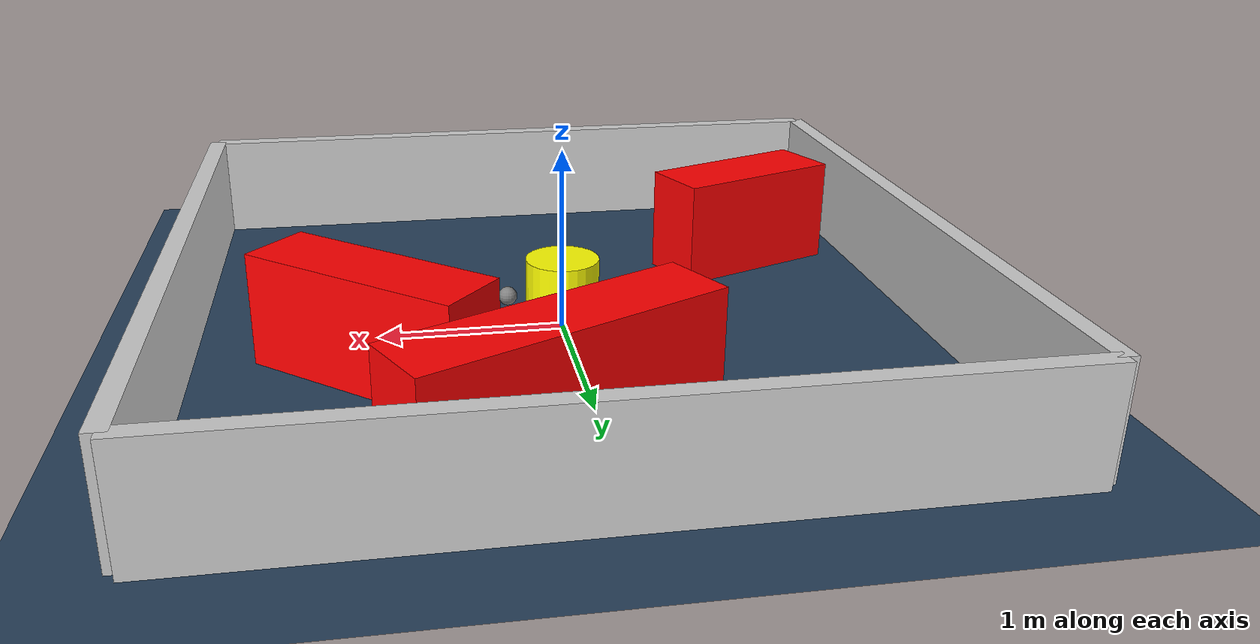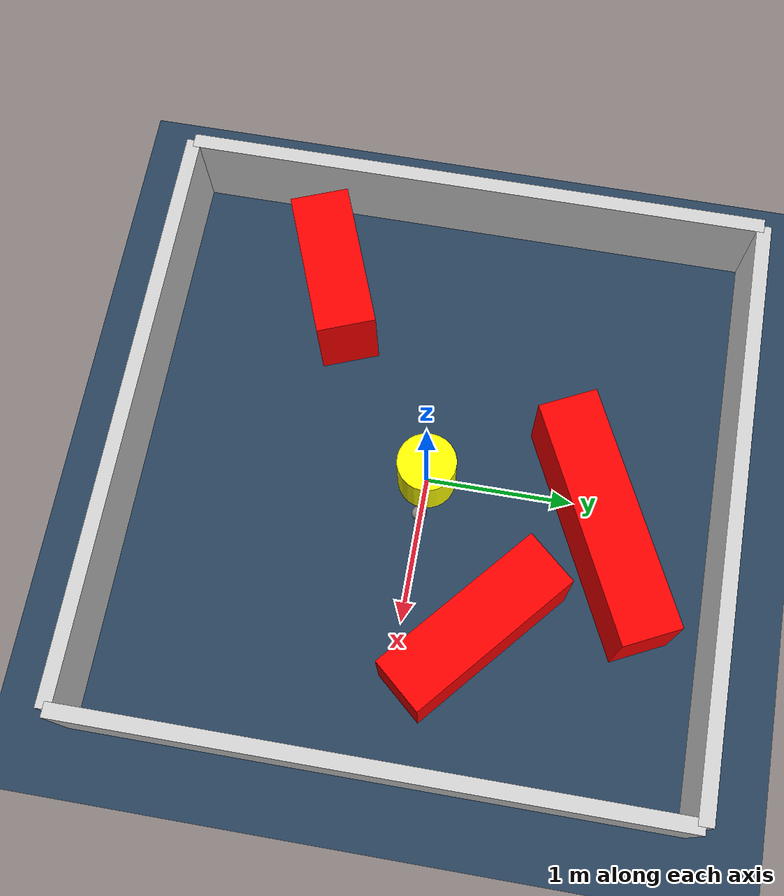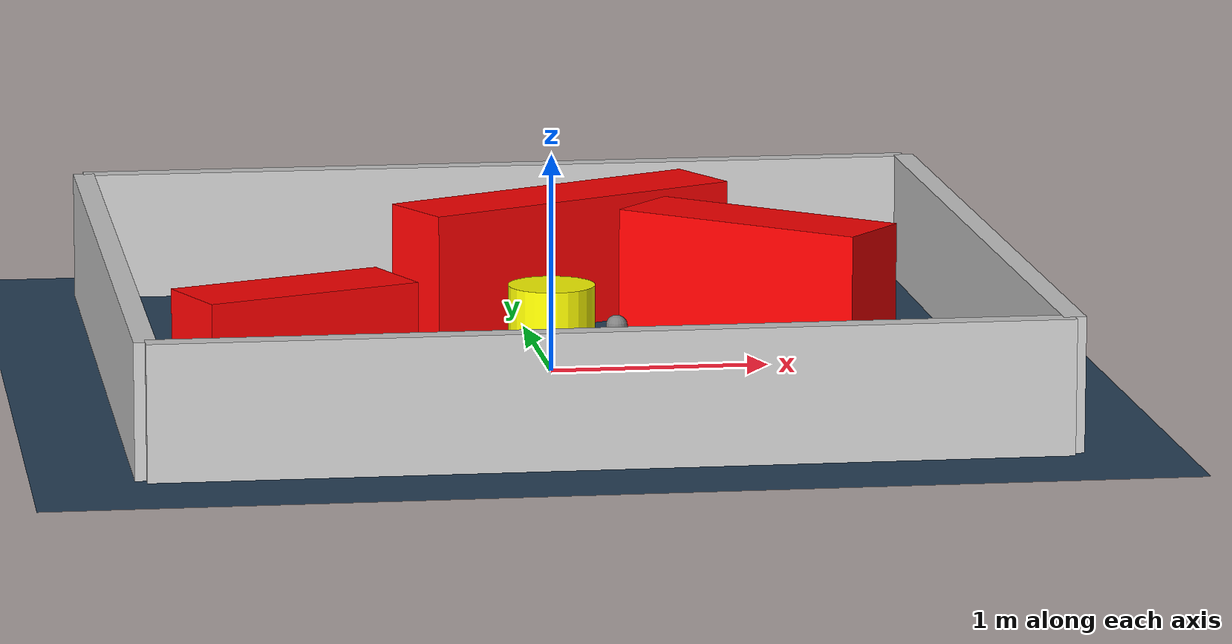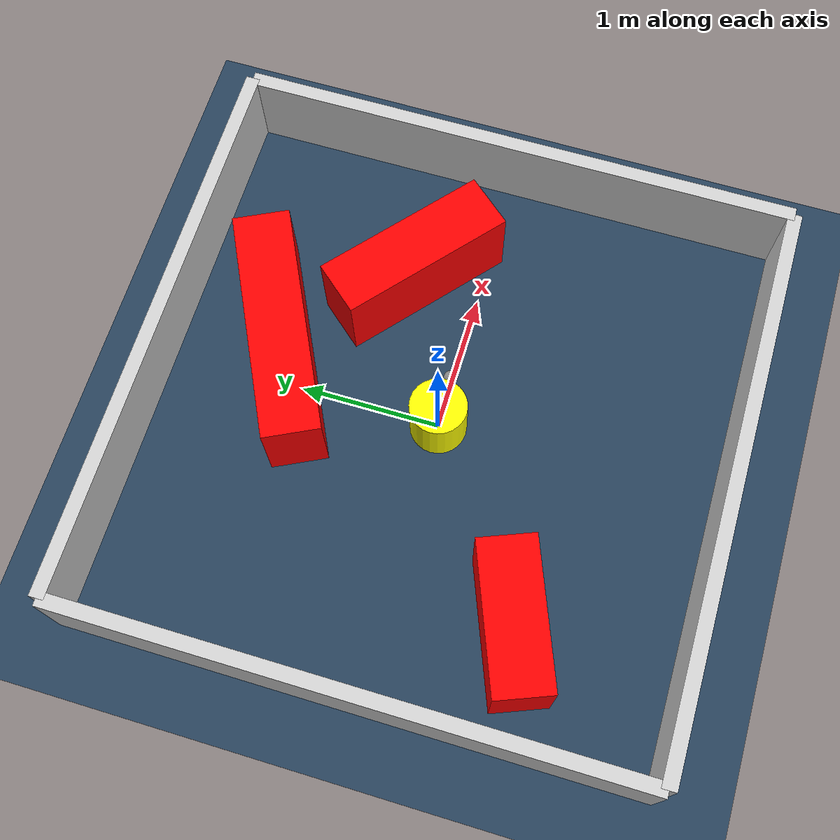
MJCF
<?xml version="1.0" ?>
<mujoco model="generated_environment">
  <option timestep="0.01" integrator="RK4" cone="elliptic"/>
  <default>
    <geom density="1"/>
  </default>
  <asset>
    <texture builtin="gradient" height="3072" rgb1="0.3 0.5 0.7" rgb2="0 0 0" type="skybox" width="512"/>
    <texture builtin="checker" height="300" mark="edge" markrgb="0.8 0.8 0.8" name="groundplane" rgb1="0.2 0.3 0.4" rgb2="0.1 0.2 0.3" type="2d" width="300"/>
    <material name="groundplane" reflectance="0.2" texrepeat="5 5" texture="groundplane" texuniform="true"/>
    <material name="robot" rgba="0.0 1.0 0.0 1"/>
  </asset>
  <worldbody>
    <light dir="0 0 -1" directional="true" pos="0 0 1.5"/>
    <geom condim="4" friction="1.0 0.005 0.001" material="groundplane" name="floor" size="0 0 0.05" type="plane"/>
    <body name="walls">
      <geom name="wall_1" condim="4" pos="-2.0 0.0 0.3" rgba="0.800000011920929 0.800000011920929 0.800000011920929 1.0" size="0.05 2.0 0.3" type="box"/>
      <geom name="wall_2" condim="4" pos="2.0 0.0 0.3" rgba="0.800000011920929 0.800000011920929 0.800000011920929 1.0" size="0.05 2.0 0.3" type="box"/>
      <geom name="wall_3" condim="4" pos="0.0 -2.0 0.3" rgba="0.800000011920929 0.800000011920929 0.800000011920929 1.0" size="2.0 0.05 0.3" type="box"/>
      <geom name="wall_4" condim="4" pos="0.0 2.0 0.3" rgba="0.800000011920929 0.800000011920929 0.800000011920929 1.0" size="2.0 0.05 0.3" type="box"/>
    </body>
    <body name="robot">
      <joint name="joint_x" type="slide" pos="0 0 0" axis="1 0 0"/>
      <joint name="joint_y" type="slide" pos="0 0 0" axis="0 1 0"/>
      <geom name="robot" type="sphere" pos="0.3 0.0 0.2" size="0.05" mass="5." friction="1.0 0.005 0.0001" condim="4" rgba="0.5 0.5 0.5 1.0"/>
      <site name="sensor_ball"/>
    </body>
    <body name="obstacle_movable_1">
      <geom name="obstacle_movable_1" condim="4" pos="0.0 0.0 0.2" euler="0 0 0.0" friction="1.0 0.005 0.001" rgba="1.0 1.0 0.0 1.0" size="0.2 0.2 0.0" type="cylinder" mass="0.1"/>
      <joint type="free"/>
    </body>
    <body name="obstacle_2_static">
      <geom name="obstacle_2_static" condim="4" pos="1.0272752664000109 0.48108295821741476 0.3" euler="0 0 139.38044067208335" friction="1.0 0.005 0.001" rgba="1 0 0 1" size="0.6309568387635238 0.2 0.3" type="box"/>
    </body>
    <body name="obstacle_3_static">
      <geom name="obstacle_3_static" condim="4" pos="0.20892223091334006 1.2053485570568616 0.3" euler="0 0 26.29551699161408" friction="1.0 0.005 0.001" rgba="1 0 0 1" size="0.8220840283674546 0.2 0.3" type="box"/>
    </body>
    <body name="obstacle_4_static">
      <geom name="obstacle_4_static" condim="4" pos="-1.2562870533326032 -0.8666334820741367 0.3" euler="0 0 201.5299679545995" friction="1.0 0.005 0.001" rgba="1 0 0 1" size="0.5068918123695626 0.2 0.3" type="box"/>
    </body>
  </worldbody>
  <actuator>
    <motor name="actuator_x" joint="joint_x" gear="1" ctrlrange="-1 1"/>
    <motor name="actuator_y" joint="joint_y" gear="1" ctrlrange="-1 1"/>
  </actuator>
</mujoco>
